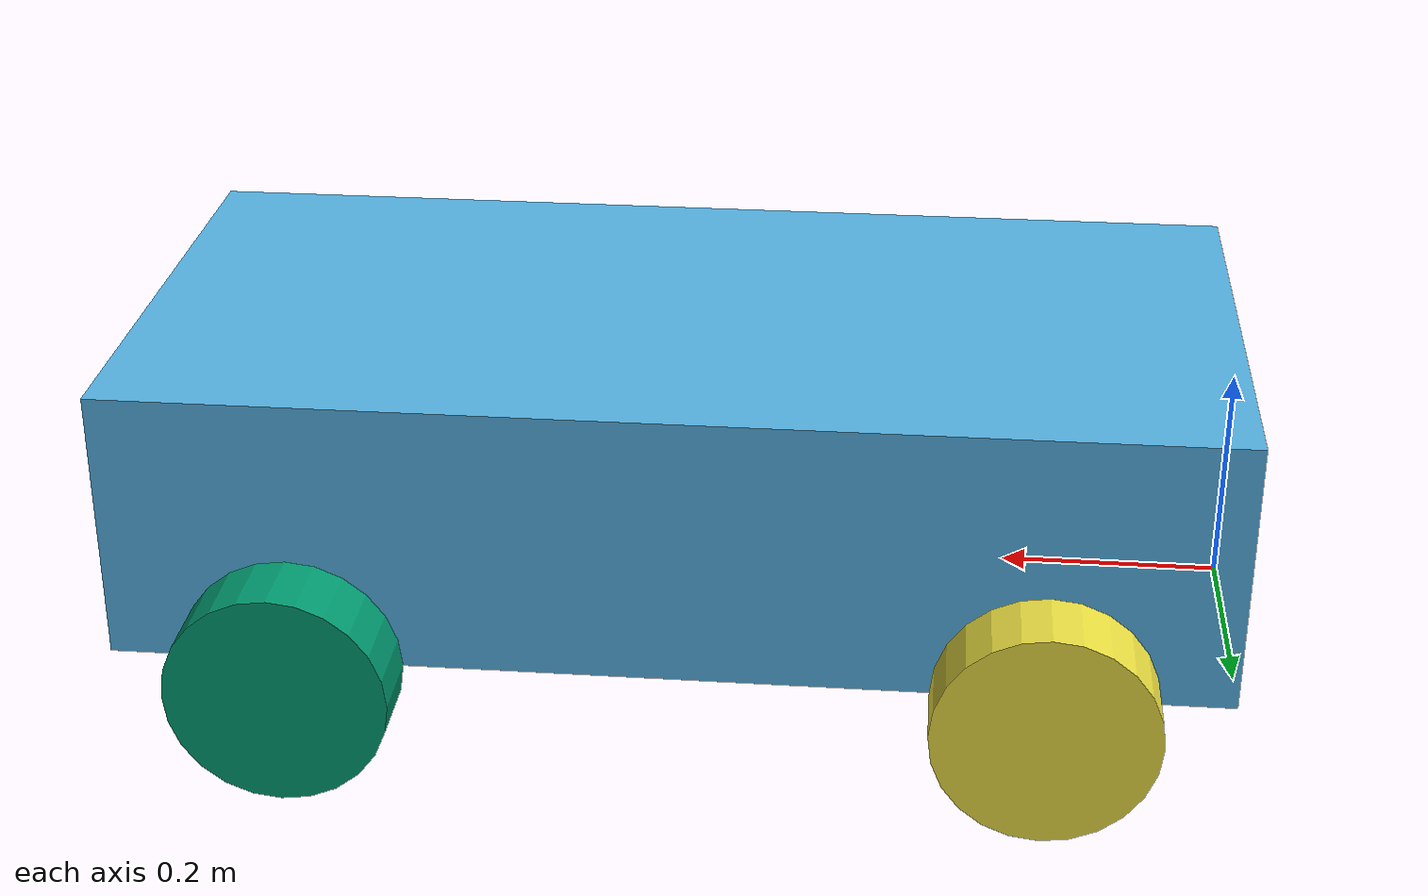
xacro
<?xml version="1.0"?>
<robot xmlns:xacro="http://www.ros.org/wiki/xacro" name="ekalavya">

<!-- macros for inertial blocks -->
<xacro:macro name="inertial_box" params="mass x y z *origin">
    <inertial>
        <xacro:insert_block name="origin"/>
        <mass value="${mass}" />
        <inertia ixx="${(1/12) * mass * (y*y+z*z)}" ixy="0.0" ixz="0.0"
                iyy="${(1/12) * mass * (x*x+z*z)}" iyz="0.0"
                izz="${(1/12) * mass * (x*x+y*y)}" />
    </inertial>
</xacro:macro>

<xacro:macro name="inertial_cylinder" params="mass length radius *origin">
    <inertial>
        <xacro:insert_block name="origin"/>
        <mass value="${mass}" />
        <inertia ixx="${(1/12) * mass * (3*radius*radius + length*length)}" ixy="0.0" ixz="0.0"
                iyy="${(1/12) * mass * (3*radius*radius + length*length)}" iyz="0.0"
                izz="${(1/2) * mass * (radius*radius)}" />
    </inertial>
</xacro:macro>
<!-- end of macros -->

<link name="base_link"></link>

<!-- chassis -->
<!-- car parameters -->
<xacro:property name="car_length" value="1"/>
<xacro:property name="car_width" value="0.5"/>
<xacro:property name="car_height" value="0.25"/>

<joint name="base_to_chassis_joint" type="fixed">
    <parent link="base_link"/>
    <child link="chassis_link"/>
    <origin xyz="${car_length/2} 0.0 ${car_height/2}" rpy="0.0 0.0 0.0"/>
</joint>

<link name="chassis_link">
    <visual>
        <origin xyz="0.0 0.0 0.0" rpy="0.0 0.0 0.0"/>
        <geometry>
            <box size="${car_length} ${car_width} ${car_height}"/>
        </geometry>
    </visual>
    <collision>
        <origin xyz="0.0 0.0 0.0" rpy="0.0 0.0 0.0"/>
        <geometry>
            <box size="${car_length} ${car_width} ${car_height}"/>
        </geometry>
    </collision>
    <xacro:inertial_box mass="1" x="${car_length}" y="${car_width}" z="${car_height}">
        <origin xyz="0.0 0 0" rpy="0 0 0"/>
    </xacro:inertial_box>
</link>

<!-- wheels -->
<!-- wheel properties -->
<xacro:property name="wheel_radius" value="${car_height/2.5}"/>
<xacro:property name="wheel_length" value="${car_width/7}"/>

<!-- left wheel1 -->
<joint name="chassis_to_left_wheel1_joint" type="continuous">
    <parent link="chassis_link"/>
    <child link="left_wheel1_link"/>
    <axis xyz="0 0 1"/>
    <origin xyz="${car_length/3} ${car_width/2 + wheel_length/2} ${-car_height/2}" rpy="${-pi/2} 0 0"/>
</joint>

<link name="left_wheel1_link">
    <visual>
        <origin xyz="0.0 0.0 0.0" rpy="0.0 0.0 0.0"/>
        <geometry>
            <cylinder radius="${wheel_radius}" length="${wheel_length}"/>
        </geometry>
    </visual>
    <collision>
        <origin xyz="0.0 0.0 0.0" rpy="0.0 0.0 0.0"/>
        <geometry>
            <cylinder radius="${wheel_radius}" length="${wheel_length}"/>
        </geometry>
    </collision>
    <xacro:inertial_cylinder mass="0.25" length="${wheel_length}" radius="${wheel_radius}">
        <origin xyz="0.0 0.0 0.0" rpy="0.0 0.0 0.0"/>
    </xacro:inertial_cylinder>
</link>

<!-- left wheel2 -->
<joint name="chassis_to_left_wheel2_joint" type="continuous">
    <parent link="chassis_link"/>
    <child link="left_wheel2_link"/>
    <axis xyz="0 0 1"/>
    <origin xyz="${-car_length/3} ${car_width/2 + wheel_length/2} ${-car_height/2}" rpy="${-pi/2} 0 0"/>
</joint>

<link name="left_wheel2_link">
    <visual>
        <origin xyz="0.0 0.0 0.0" rpy="0.0 0.0 0.0"/>
        <geometry>
            <cylinder radius="${wheel_radius}" length="${wheel_length}"/>
        </geometry>
    </visual>
        <collision>
        <origin xyz="0.0 0.0 0.0" rpy="0.0 0.0 0.0"/>
        <geometry>
            <cylinder radius="${wheel_radius}" length="${wheel_length}"/>
        </geometry>
    </collision>
    <xacro:inertial_cylinder mass="0.25" length="${wheel_length}" radius="${wheel_radius}">
        <origin xyz="0.0 0.0 0.0" rpy="0.0 0.0 0.0"/>
    </xacro:inertial_cylinder>
</link>

<!-- right wheel1 -->
<joint name="chassis_to_right_wheel1_joint" type="continuous">
    <parent link="chassis_link"/>
    <child link="right_wheel1_link"/>
    <axis xyz="0 0 -1"/>
    <origin xyz="${car_length/3} ${-car_width/2 - wheel_length/2} ${-car_height/2}" rpy="${pi/2} 0 0"/>
</joint>

<link name="right_wheel1_link">
    <visual>
        <origin xyz="0.0 0.0 0.0" rpy="0.0 0.0 0.0"/>
        <geometry>
            <cylinder radius="${wheel_radius}" length="${wheel_length}"/>
        </geometry>
    </visual>
    <collision>
        <origin xyz="0.0 0.0 0.0" rpy="0.0 0.0 0.0"/>
        <geometry>
            <cylinder radius="${wheel_radius}" length="${wheel_length}"/>
        </geometry>
    </collision>
    <xacro:inertial_cylinder mass="0.25" length="${wheel_length}" radius="${wheel_radius}">
        <origin xyz="0.0 0.0 0.0" rpy="0.0 0.0 0.0"/>
    </xacro:inertial_cylinder>
</link>

<!-- left wheel2 -->
<joint name="chassis_to_right_wheel2_joint" type="continuous">
    <parent link="chassis_link"/>
    <child link="right_wheel2_link"/>
    <axis xyz="0 0 -1"/>
    <origin xyz="${-car_length/3} ${-car_width/2 - wheel_length/2} ${-car_height/2}" rpy="${pi/2} 0 0"/>
</joint>

<link name="right_wheel2_link">
    <visual>
        <origin xyz="0.0 0.0 0.0" rpy="0.0 0.0 0.0"/>
        <geometry>
            <cylinder radius="${wheel_radius}" length="${wheel_length}"/>
        </geometry>
    </visual>
    <collision>
        <origin xyz="0.0 0.0 0.0" rpy="0.0 0.0 0.0"/>
        <geometry>
            <cylinder radius="${wheel_radius}" length="${wheel_length}"/>
        </geometry>
    </collision>
    <xacro:inertial_cylinder mass="0.25" length="${wheel_length}" radius="${wheel_radius}">
        <origin xyz="0.0 0.0 0.0" rpy="0.0 0.0 0.0"/>
    </xacro:inertial_cylinder>
</link>

</robot>
